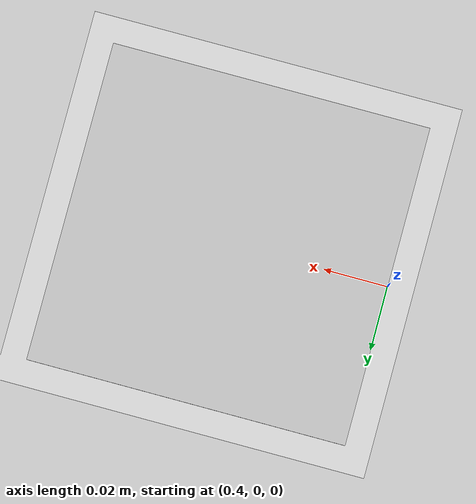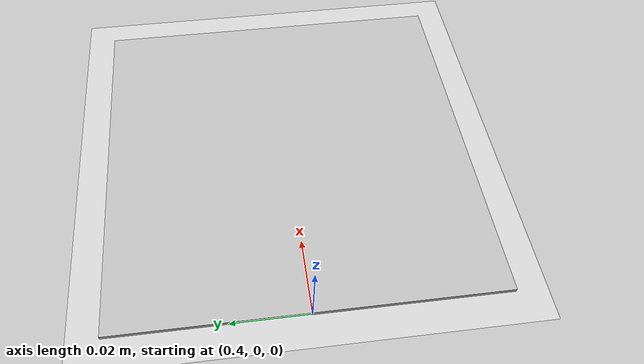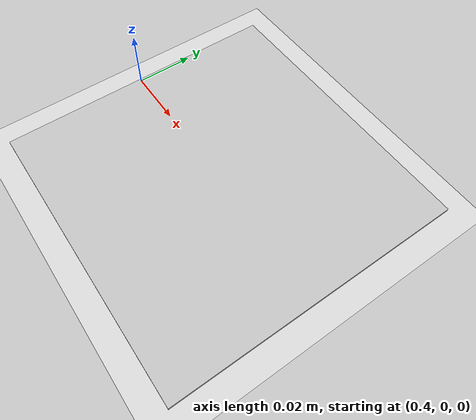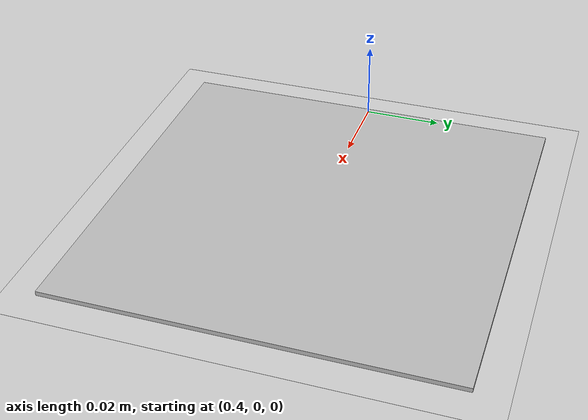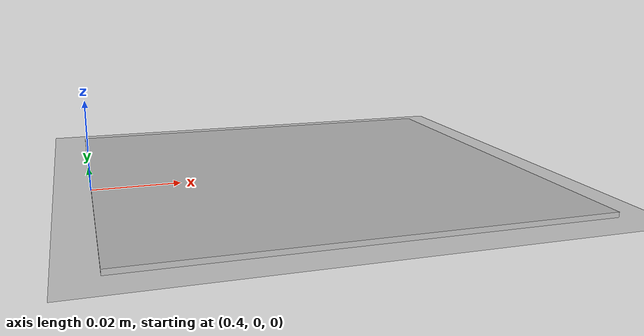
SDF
<sdf version="1.6">
 <world name="default">
  <light name="sun" type="directional">
   <pose>0 0 10 0 -0 0</pose>
   <diffuse>0.8 0.8 0.8 1</diffuse>
   <specular>0.2 0.2 0.2 1</specular>
   <attenuation>
    <range>1000</range>
    <constant>0.9</constant>
    <linear>0.01</linear>
    <quadratic>0.001</quadratic>
   </attenuation>
   <direction>-0.5 0.1 -0.9</direction>
  </light>
  <model name="ground_plane">
   <static>1</static>
   <link name="link">
    <collision name="collision">
     <geometry><plane><normal>0 0 1</normal><size>100 100</size></plane></geometry>
     <surface><friction><ode><mu>100</mu><mu2>50</mu2></ode></friction></surface>
    </collision>
    <visual name="visual">
     <cast_shadows>0</cast_shadows>
     <geometry><plane><normal>0 0 1</normal><size>100 100</size></plane></geometry>
     <material>
      <script><uri>file://media/materials/scripts/gazebo.material</uri><name>Gazebo/Grey</name></script>
     </material>
    </visual>
   </link>
  </model>
  <gravity>0 0 -9.8</gravity>
  <magnetic_field>6e-06 2.3e-05 -4.2e-05</magnetic_field>
  <atmosphere type="adiabatic"/>
  <physics name="default_physics" default="0" type="ode">
   <max_step_size>0.001</max_step_size>
   <real_time_factor>1</real_time_factor>
   <real_time_update_rate>1000</real_time_update_rate>
  </physics>
  <scene><ambient>0.4 0.4 0.4 1</ambient><background>0.7 0.7 0.7 1</background><shadows>0</shadows></scene>
  <spherical_coordinates>
   <surface_model>EARTH_WGS84</surface_model>
   <latitude_deg>0</latitude_deg>
   <longitude_deg>0</longitude_deg>
   <elevation>0</elevation>
   <heading_deg>0</heading_deg>
  </spherical_coordinates>
  <light name="user_spot_light_0" type="spot">
   <pose>0.56582 0.254309 1 0 -0 0</pose>
   <diffuse>0.5 0.5 0.5 1</diffuse>
   <specular>0.1 0.1 0.1 1</specular>
   <direction>0 0 -1</direction>
   <attenuation>
    <range>20</range>
    <constant>0.5</constant>
    <linear>0.01</linear>
    <quadratic>0.001</quadratic>
   </attenuation>
   <cast_shadows>0</cast_shadows>
   <spot><inner_angle>0.6</inner_angle><outer_angle>1</outer_angle><falloff>1</falloff></spot>
  </light>
  <light name="user_spot_light_1" type="spot">
   <pose>0.051488 -4.60335 1 0 -0 0</pose>
   <diffuse>0.5 0.5 0.5 1</diffuse>
   <specular>0.1 0.1 0.1 1</specular>
   <direction>0 0 -1</direction>
   <attenuation>
    <range>20</range>
    <constant>0.5</constant>
    <linear>0.01</linear>
    <quadratic>0.001</quadratic>
   </attenuation>
   <cast_shadows>0</cast_shadows>
   <spot><inner_angle>0.6</inner_angle><outer_angle>1</outer_angle><falloff>1</falloff></spot>
  </light>
  <light name="user_spot_light_2" type="spot">
   <pose>-4.55766 0.039409 1 0 -0 0</pose>
   <diffuse>0.5 0.5 0.5 1</diffuse>
   <specular>0.1 0.1 0.1 1</specular>
   <direction>0 0 -1</direction>
   <attenuation>
    <range>20</range>
    <constant>0.5</constant>
    <linear>0.01</linear>
    <quadratic>0.001</quadratic>
   </attenuation>
   <cast_shadows>0</cast_shadows>
   <spot><inner_angle>0.6</inner_angle><outer_angle>1</outer_angle><falloff>1</falloff></spot>
  </light>
  <model name="Marker1">
   <static>1</static>
   <link name="link">
    <visual name="visual">
     <geometry><mesh><uri>model://marker1/meshes/Marker1.dae</uri><scale>0.2 0.2 0.2</scale></mesh></geometry>
    </visual>
   </link>
   <pose>0.4 0 0 0 1.57079 0</pose>
  </model>
 </world>
</sdf>
